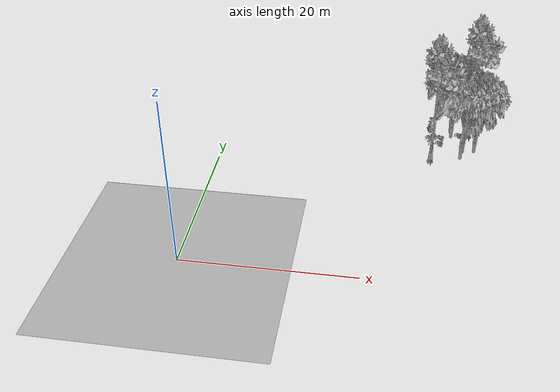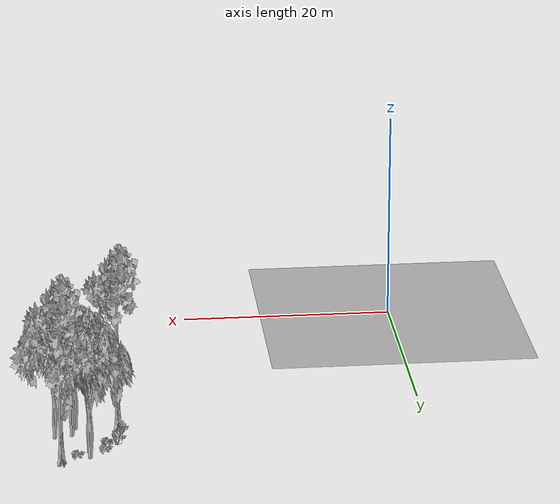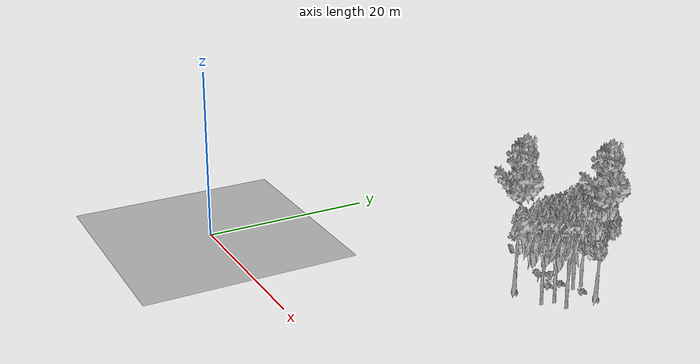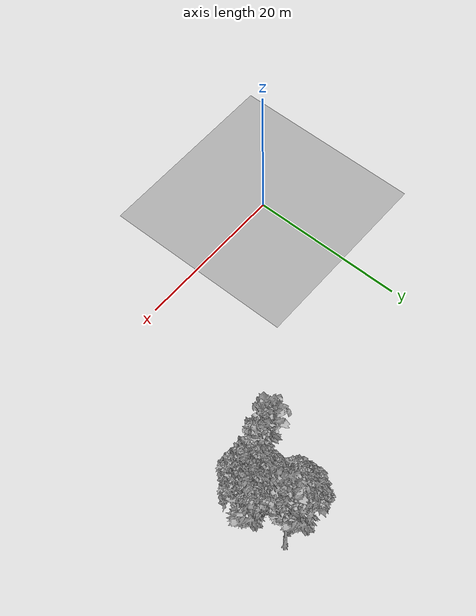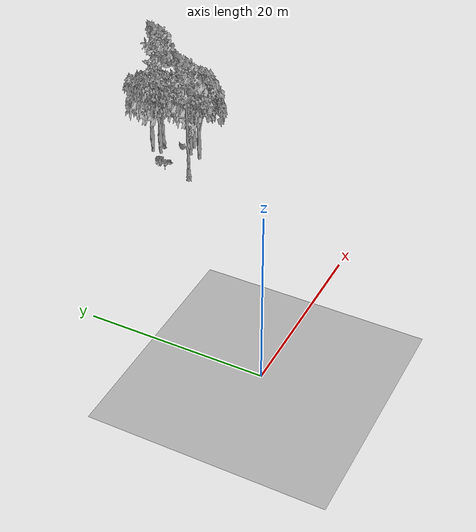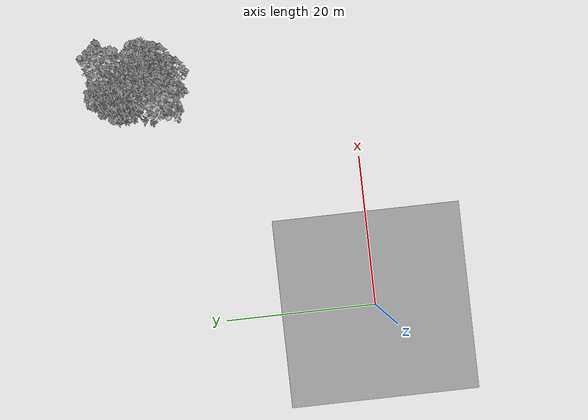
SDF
<sdf version="1.7">
 <world name="default">
  <model name="ground_plane">
   <static>1</static>
   <link name="link">
    <collision name="collision">
     <pose>-50 0 0 0 -0 0</pose>
     <geometry><plane><normal>0 0 1</normal><size>80 80</size></plane></geometry>
     <surface><contact><ode><min_depth>0.01</min_depth><max_vel>0</max_vel></ode></contact></surface>
    </collision>
    <visual name="grass">
     <cast_shadows>0</cast_shadows>
     <geometry>
      <mesh>
       <scale>0.46714285714285714 0.46714285714285714 0.1</scale>
       <uri>file://grass_plane/meshes/grass_plane.dae</uri>
      </mesh>
     </geometry>
    </visual>
   </link>
  </model>
  <model name="Tree 233">
   <static>1</static>
   <pose>27.563354355701122 23.591005539315503 0 1.57079 -0 0</pose>
   <link name="link">
    <collision name="collision">
     <geometry><mesh><scale>3.5 5 3.5</scale><uri>model://tree_9/meshes/tree_9.obj</uri></mesh></geometry>
    </collision>
    <visual name="visual">
     <geometry><mesh><scale>3.5 5 3.5</scale><uri>model://tree_9/meshes/tree_9.obj</uri></mesh></geometry>
    </visual>
   </link>
  </model>
  <model name="Tree 424">
   <static>1</static>
   <pose>32.82112007458328 30.24200239358312 0 1.57079 -0 0</pose>
   <link name="link">
    <collision name="collision">
     <geometry><mesh><scale>3.5 5 3.5</scale><uri>model://tree_9/meshes/tree_9.obj</uri></mesh></geometry>
    </collision>
    <visual name="visual">
     <geometry><mesh><scale>3.5 5 3.5</scale><uri>model://tree_9/meshes/tree_9.obj</uri></mesh></geometry>
    </visual>
   </link>
  </model>
  <model name="Tree 463">
   <static>1</static>
   <pose>31.32574306819511 24.17580715358801 0 1.57079 -0 0</pose>
   <link name="link">
    <collision name="collision">
     <geometry><mesh><scale>3.5 5 3.5</scale><uri>model://tree_2/meshes/tree_2.obj</uri></mesh></geometry>
    </collision>
    <visual name="visual">
     <geometry><mesh><scale>3.5 5 3.5</scale><uri>model://tree_2/meshes/tree_2.obj</uri></mesh></geometry>
    </visual>
   </link>
  </model>
  <model name="Tree 574">
   <static>1</static>
   <pose>30.20145476803539 30.303386296083744 0 1.57079 -0 0</pose>
   <link name="link">
    <collision name="collision">
     <geometry><mesh><scale>3.5 5 3.5</scale><uri>model://tree_2/meshes/tree_2.obj</uri></mesh></geometry>
    </collision>
    <visual name="visual">
     <geometry><mesh><scale>3.5 5 3.5</scale><uri>model://tree_2/meshes/tree_2.obj</uri></mesh></geometry>
    </visual>
   </link>
  </model>
  <model name="Tree 585">
   <static>1</static>
   <pose>30.263484117125003 29.181120486460244 0 1.57079 -0 0</pose>
   <link name="link">
    <collision name="collision">
     <geometry><mesh><scale>3.5 5 3.5</scale><uri>model://tree_2/meshes/tree_2.obj</uri></mesh></geometry>
    </collision>
    <visual name="visual">
     <geometry><mesh><scale>3.5 5 3.5</scale><uri>model://tree_2/meshes/tree_2.obj</uri></mesh></geometry>
    </visual>
   </link>
  </model>
  <model name="Tree 609">
   <static>1</static>
   <pose>33.17804889491934 25.938567290626168 0 1.57079 -0 0</pose>
   <link name="link">
    <collision name="collision">
     <geometry><mesh><scale>3.5 5 3.5</scale><uri>model://tree_2/meshes/tree_2.obj</uri></mesh></geometry>
    </collision>
    <visual name="visual">
     <geometry><mesh><scale>3.5 5 3.5</scale><uri>model://tree_2/meshes/tree_2.obj</uri></mesh></geometry>
    </visual>
   </link>
  </model>
  <model name="Tree 616">
   <static>1</static>
   <pose>31.652176391392246 25.591476601163478 0 1.57079 -0 0</pose>
   <link name="link">
    <collision name="collision">
     <geometry><mesh><scale>3.5 5 3.5</scale><uri>model://tree_2/meshes/tree_2.obj</uri></mesh></geometry>
    </collision>
    <visual name="visual">
     <geometry><mesh><scale>3.5 5 3.5</scale><uri>model://tree_2/meshes/tree_2.obj</uri></mesh></geometry>
    </visual>
   </link>
  </model>
  <model name="Bush 215">
   <static>1</static>
   <pose>28.708755035305714 27.1792310979136 0 1.57079 -0 0</pose>
   <link name="link">
    <collision name="collision">
     <geometry><mesh><scale>2 2 2</scale><uri>model://bush_2/meshes/bush_2.obj</uri></mesh></geometry>
     <surface><contact><collide_without_contact>false</collide_without_contact></contact></surface>
    </collision>
    <visual name="visual">
     <geometry><mesh><scale>2 2 2</scale><uri>model://bush_2/meshes/bush_2.obj</uri></mesh></geometry>
    </visual>
   </link>
  </model>
  <model name="Bush 548">
   <static>1</static>
   <pose>31.38226617548733 29.562278315982553 0 1.57079 -0 0</pose>
   <link name="link">
    <collision name="collision">
     <geometry><mesh><scale>2 2 2</scale><uri>model://bush_2/meshes/bush_2.obj</uri></mesh></geometry>
     <surface><contact><collide_without_contact>false</collide_without_contact></contact></surface>
    </collision>
    <visual name="visual">
     <geometry><mesh><scale>2 2 2</scale><uri>model://bush_2/meshes/bush_2.obj</uri></mesh></geometry>
    </visual>
   </link>
  </model>
  <model name="Bush 588">
   <static>1</static>
   <pose>28.90336904323985 28.63034059611168 0 1.57079 -0 0</pose>
   <link name="link">
    <collision name="collision">
     <geometry><mesh><scale>2 2 2</scale><uri>model://bush_2/meshes/bush_2.obj</uri></mesh></geometry>
     <surface><contact><collide_without_contact>false</collide_without_contact></contact></surface>
    </collision>
    <visual name="visual">
     <geometry><mesh><scale>2 2 2</scale><uri>model://bush_2/meshes/bush_2.obj</uri></mesh></geometry>
    </visual>
   </link>
  </model>
  <model name="Bush 624">
   <static>1</static>
   <pose>27.82773469513785 27.834983738728965 0 1.57079 -0 0</pose>
   <link name="link">
    <collision name="collision">
     <geometry><mesh><scale>2 2 2</scale><uri>model://bush_4/meshes/bush_4.obj</uri></mesh></geometry>
     <surface><contact><collide_without_contact>false</collide_without_contact></contact></surface>
    </collision>
    <visual name="visual">
     <geometry><mesh><scale>2 2 2</scale><uri>model://bush_4/meshes/bush_4.obj</uri></mesh></geometry>
    </visual>
   </link>
  </model>
  <model name="Bush 628">
   <static>1</static>
   <pose>27.372408239232414 26.883971831624123 0 1.57079 -0 0</pose>
   <link name="link">
    <collision name="collision">
     <geometry><mesh><scale>2 2 2</scale><uri>model://bush_5/meshes/bush_5.obj</uri></mesh></geometry>
     <surface><contact><collide_without_contact>false</collide_without_contact></contact></surface>
    </collision>
    <visual name="visual">
     <geometry><mesh><scale>2 2 2</scale><uri>model://bush_5/meshes/bush_5.obj</uri></mesh></geometry>
    </visual>
   </link>
  </model>
 </world>
</sdf>
